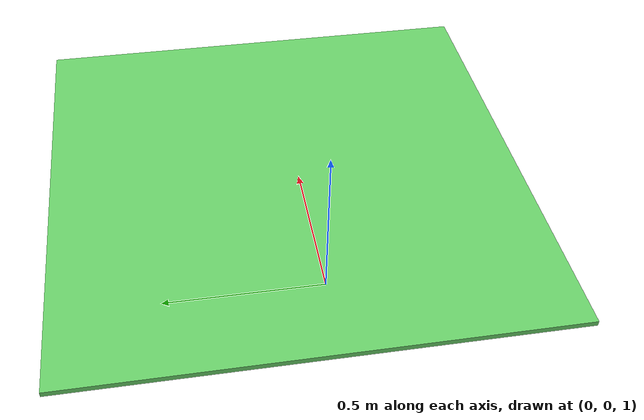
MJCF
<?xml version="1.0" encoding="utf-8"?>
<mujoco>
	<asset>
		<material name="table_mat" specular="0" shininess="0" reflectance="0.5" rgba="0.4 0.8 0.4 1"></material>
	</asset>

	<worldbody>
		<body pos="0.80 0.0 0.76" name="table0">
			<geom size="0.896 0.896 0.01" solimp="0.0 0.55 0.001" solref="0.002 1" condim="3" margin="0" type="box" mass="2000" material="table_mat" name="table0"></geom>
		</body>
	</worldbody>
</mujoco>
